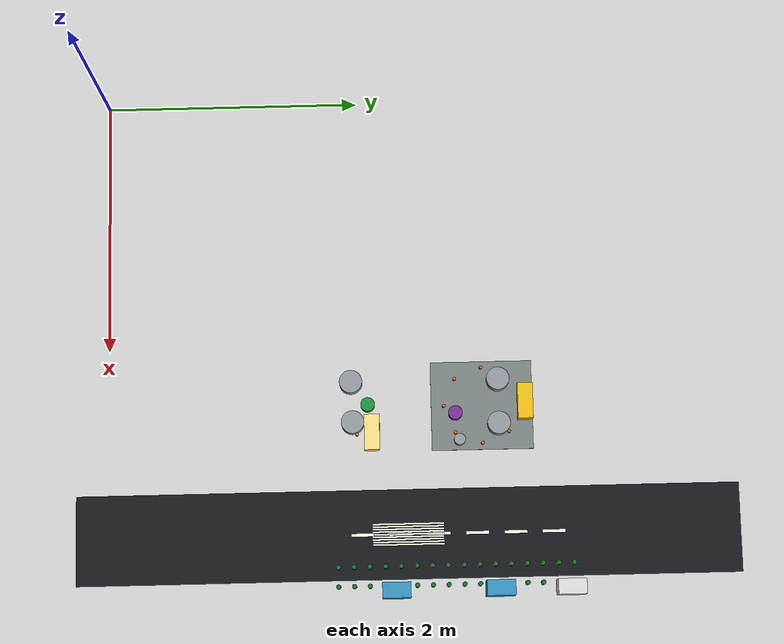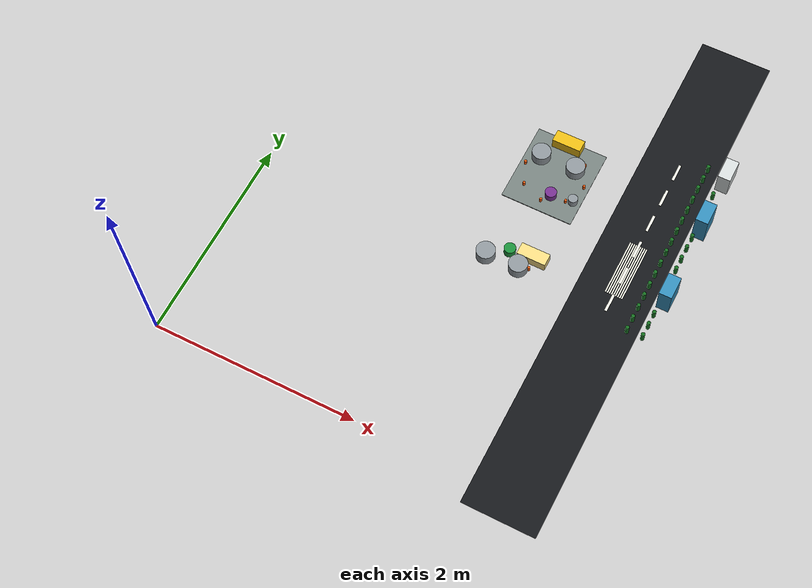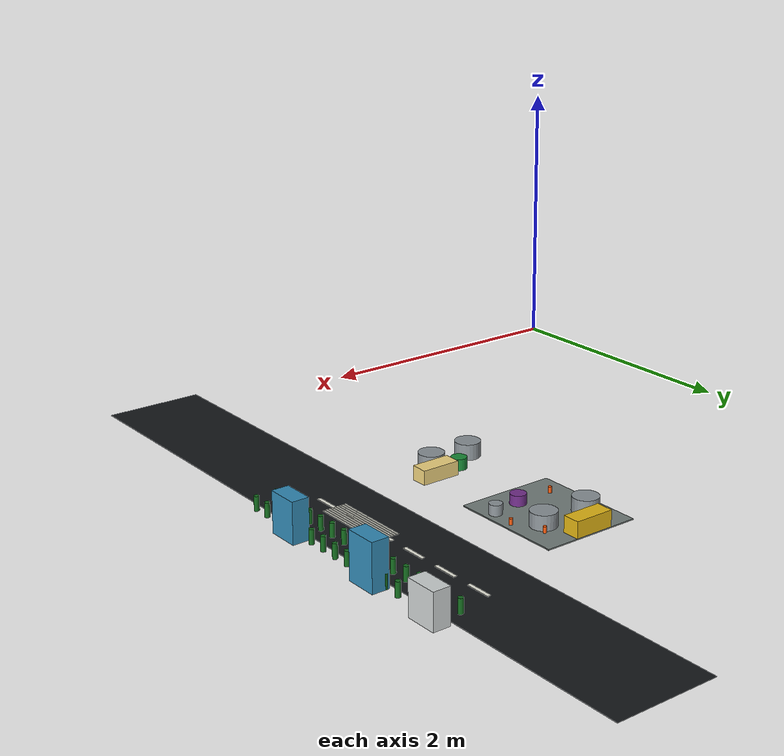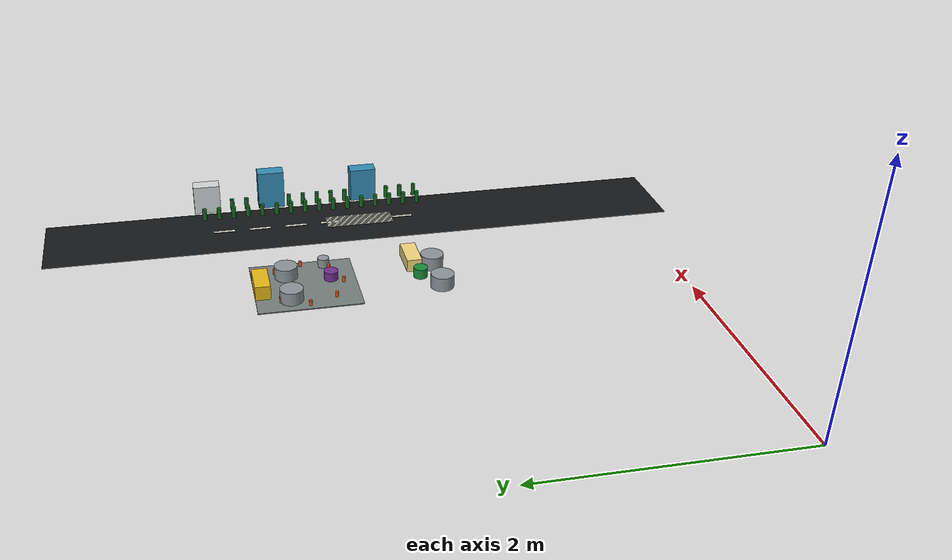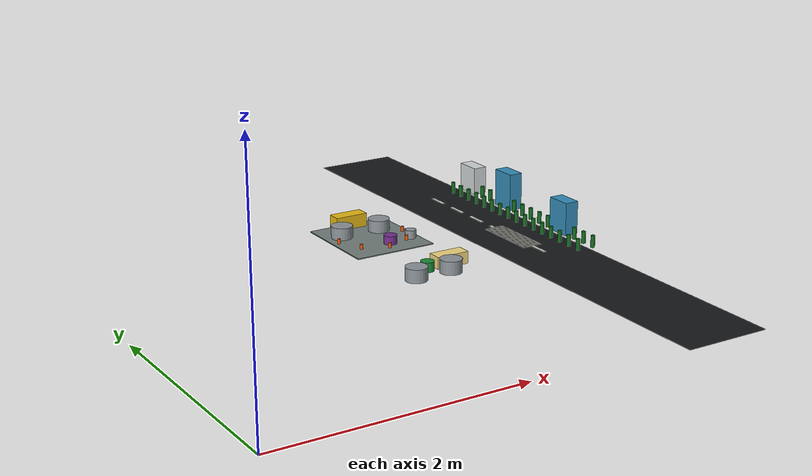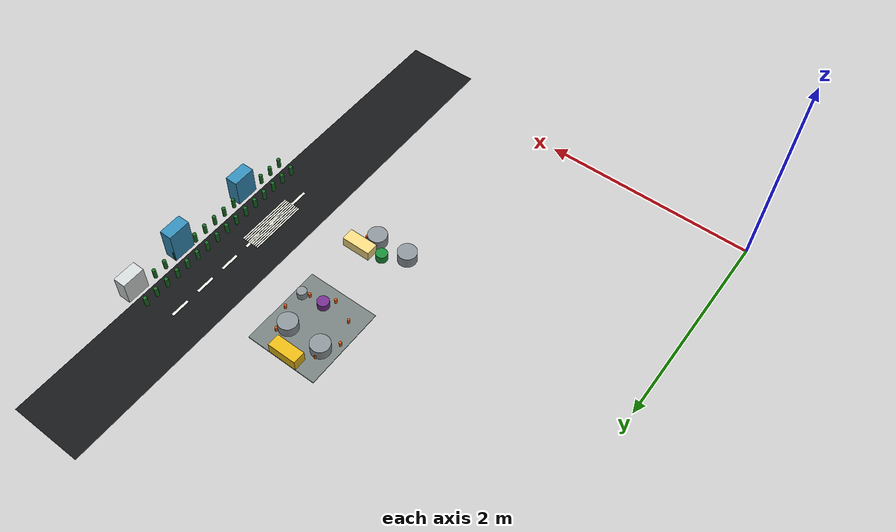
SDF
<sdf version="1.7">
 <world name="nexus_sandbox_imx219">
  <model name="RD-RING-E">
   <static>true</static>
   <pose>3.5 2.35 0.051000000000000004 0 0 0</pose>
   <link name="link">
    <collision name="collision">
     <geometry><box><size>0.7000000000000001 5.2 0.002</size></box></geometry>
    </collision>
    <visual name="visual">
     <geometry><box><size>0.7000000000000001 5.2 0.002</size></box></geometry>
     <material><ambient>0.08 0.09 0.1 1</ambient><diffuse>0.08 0.09 0.1 1</diffuse></material>
    </visual>
   </link>
  </model>
  <model name="LM-RING-E-05">
   <static>true</static>
   <pose>3.5 1.9900000000000002 0.05450000000000001 0 0 0</pose>
   <link name="link">
    <collision name="collision"><geometry><box><size>0.025 0.18 0.004</size></box></geometry></collision>
    <visual name="visual">
     <geometry><box><size>0.025 0.18 0.004</size></box></geometry>
     <material><ambient>0.93 0.93 0.88 1</ambient><diffuse>0.93 0.93 0.88 1</diffuse></material>
    </visual>
   </link>
  </model>
  <model name="LM-RING-E-06">
   <static>true</static>
   <pose>3.5 2.29 0.05450000000000001 0 0 0</pose>
   <link name="link">
    <collision name="collision"><geometry><box><size>0.025 0.18 0.004</size></box></geometry></collision>
    <visual name="visual">
     <geometry><box><size>0.025 0.18 0.004</size></box></geometry>
     <material><ambient>0.93 0.93 0.88 1</ambient><diffuse>0.93 0.93 0.88 1</diffuse></material>
    </visual>
   </link>
  </model>
  <model name="LM-RING-E-07">
   <static>true</static>
   <pose>3.5 2.59 0.05450000000000001 0 0 0</pose>
   <link name="link">
    <collision name="collision"><geometry><box><size>0.025 0.18 0.004</size></box></geometry></collision>
    <visual name="visual">
     <geometry><box><size>0.025 0.18 0.004</size></box></geometry>
     <material><ambient>0.93 0.93 0.88 1</ambient><diffuse>0.93 0.93 0.88 1</diffuse></material>
    </visual>
   </link>
  </model>
  <model name="LM-RING-E-08">
   <static>true</static>
   <pose>3.5 2.89 0.05450000000000001 0 0 0</pose>
   <link name="link">
    <collision name="collision"><geometry><box><size>0.025 0.18 0.004</size></box></geometry></collision>
    <visual name="visual">
     <geometry><box><size>0.025 0.18 0.004</size></box></geometry>
     <material><ambient>0.93 0.93 0.88 1</ambient><diffuse>0.93 0.93 0.88 1</diffuse></material>
    </visual>
   </link>
  </model>
  <model name="LM-RING-E-09">
   <static>true</static>
   <pose>3.5 3.19 0.05450000000000001 0 0 0</pose>
   <link name="link">
    <collision name="collision"><geometry><box><size>0.025 0.18 0.004</size></box></geometry></collision>
    <visual name="visual">
     <geometry><box><size>0.025 0.18 0.004</size></box></geometry>
     <material><ambient>0.93 0.93 0.88 1</ambient><diffuse>0.93 0.93 0.88 1</diffuse></material>
    </visual>
   </link>
  </model>
  <model name="LM-RING-E-10">
   <static>true</static>
   <pose>3.5 3.4899999999999998 0.05450000000000001 0 0 0</pose>
   <link name="link">
    <collision name="collision"><geometry><box><size>0.025 0.18 0.004</size></box></geometry></collision>
    <visual name="visual">
     <geometry><box><size>0.025 0.18 0.004</size></box></geometry>
     <material><ambient>0.93 0.93 0.88 1</ambient><diffuse>0.93 0.93 0.88 1</diffuse></material>
    </visual>
   </link>
  </model>
  <model name="CW-C-E-01">
   <static>true</static>
   <pose>3.42 2.35 0.05450000000000001 0 0 0</pose>
   <link name="link">
    <collision name="collision"><geometry><box><size>0.014 0.56 0.004</size></box></geometry></collision>
    <visual name="visual">
     <geometry><box><size>0.014 0.56 0.004</size></box></geometry>
     <material><ambient>0.93 0.93 0.88 1</ambient><diffuse>0.93 0.93 0.88 1</diffuse></material>
    </visual>
   </link>
  </model>
  <model name="CW-C-E-02">
   <static>true</static>
   <pose>3.44 2.35 0.05450000000000001 0 0 0</pose>
   <link name="link">
    <collision name="collision"><geometry><box><size>0.014 0.56 0.004</size></box></geometry></collision>
    <visual name="visual">
     <geometry><box><size>0.014 0.56 0.004</size></box></geometry>
     <material><ambient>0.93 0.93 0.88 1</ambient><diffuse>0.93 0.93 0.88 1</diffuse></material>
    </visual>
   </link>
  </model>
  <model name="CW-C-E-03">
   <static>true</static>
   <pose>3.46 2.35 0.05450000000000001 0 0 0</pose>
   <link name="link">
    <collision name="collision"><geometry><box><size>0.014 0.56 0.004</size></box></geometry></collision>
    <visual name="visual">
     <geometry><box><size>0.014 0.56 0.004</size></box></geometry>
     <material><ambient>0.93 0.93 0.88 1</ambient><diffuse>0.93 0.93 0.88 1</diffuse></material>
    </visual>
   </link>
  </model>
  <model name="CW-C-E-04">
   <static>true</static>
   <pose>3.48 2.35 0.05450000000000001 0 0 0</pose>
   <link name="link">
    <collision name="collision"><geometry><box><size>0.014 0.56 0.004</size></box></geometry></collision>
    <visual name="visual">
     <geometry><box><size>0.014 0.56 0.004</size></box></geometry>
     <material><ambient>0.93 0.93 0.88 1</ambient><diffuse>0.93 0.93 0.88 1</diffuse></material>
    </visual>
   </link>
  </model>
  <model name="CW-C-E-05">
   <static>true</static>
   <pose>3.5 2.35 0.05450000000000001 0 0 0</pose>
   <link name="link">
    <collision name="collision"><geometry><box><size>0.014 0.56 0.004</size></box></geometry></collision>
    <visual name="visual">
     <geometry><box><size>0.014 0.56 0.004</size></box></geometry>
     <material><ambient>0.93 0.93 0.88 1</ambient><diffuse>0.93 0.93 0.88 1</diffuse></material>
    </visual>
   </link>
  </model>
  <model name="CW-C-E-06">
   <static>true</static>
   <pose>3.52 2.35 0.05450000000000001 0 0 0</pose>
   <link name="link">
    <collision name="collision"><geometry><box><size>0.014 0.56 0.004</size></box></geometry></collision>
    <visual name="visual">
     <geometry><box><size>0.014 0.56 0.004</size></box></geometry>
     <material><ambient>0.93 0.93 0.88 1</ambient><diffuse>0.93 0.93 0.88 1</diffuse></material>
    </visual>
   </link>
  </model>
  <model name="CW-C-E-07">
   <static>true</static>
   <pose>3.54 2.35 0.05450000000000001 0 0 0</pose>
   <link name="link">
    <collision name="collision"><geometry><box><size>0.014 0.56 0.004</size></box></geometry></collision>
    <visual name="visual">
     <geometry><box><size>0.014 0.56 0.004</size></box></geometry>
     <material><ambient>0.93 0.93 0.88 1</ambient><diffuse>0.93 0.93 0.88 1</diffuse></material>
    </visual>
   </link>
  </model>
  <model name="CW-C-E-08">
   <static>true</static>
   <pose>3.56 2.35 0.05450000000000001 0 0 0</pose>
   <link name="link">
    <collision name="collision"><geometry><box><size>0.014 0.56 0.004</size></box></geometry></collision>
    <visual name="visual">
     <geometry><box><size>0.014 0.56 0.004</size></box></geometry>
     <material><ambient>0.93 0.93 0.88 1</ambient><diffuse>0.93 0.93 0.88 1</diffuse></material>
    </visual>
   </link>
  </model>
  <model name="CW-C-E-09">
   <static>true</static>
   <pose>3.58 2.35 0.05450000000000001 0 0 0</pose>
   <link name="link">
    <collision name="collision"><geometry><box><size>0.014 0.56 0.004</size></box></geometry></collision>
    <visual name="visual">
     <geometry><box><size>0.014 0.56 0.004</size></box></geometry>
     <material><ambient>0.93 0.93 0.88 1</ambient><diffuse>0.93 0.93 0.88 1</diffuse></material>
    </visual>
   </link>
  </model>
  <model name="IND-NE-PAD">
   <static>true</static>
   <pose>2.5 2.95 0.054000000000000006 0 0 0</pose>
   <link name="link">
    <collision name="collision">
     <geometry><box><size>0.7000000000000001 0.8 0.008</size></box></geometry>
    </collision>
    <visual name="visual">
     <geometry><box><size>0.7000000000000001 0.8 0.008</size></box></geometry>
     <material><ambient>0.46 0.5 0.49 1</ambient><diffuse>0.46 0.5 0.49 1</diffuse></material>
    </visual>
   </link>
  </model>
  <model name="NE-T01">
   <static>true</static>
   <pose>2.3000000000000003 3.08 0.10500000000000001 0 0 0</pose>
   <link name="link">
    <collision name="collision">
     <geometry><cylinder><radius>0.09</radius><length>0.11</length></cylinder></geometry>
    </collision>
    <visual name="visual">
     <geometry><cylinder><radius>0.09</radius><length>0.11</length></cylinder></geometry>
     <material><ambient>0.55 0.58 0.6 1</ambient><diffuse>0.55 0.58 0.6 1</diffuse></material>
    </visual>
   </link>
  </model>
  <model name="NE-T02">
   <static>true</static>
   <pose>2.65 3.08 0.10500000000000001 0 0 0</pose>
   <link name="link">
    <collision name="collision">
     <geometry><cylinder><radius>0.09</radius><length>0.11</length></cylinder></geometry>
    </collision>
    <visual name="visual">
     <geometry><cylinder><radius>0.09</radius><length>0.11</length></cylinder></geometry>
     <material><ambient>0.55 0.58 0.6 1</ambient><diffuse>0.55 0.58 0.6 1</diffuse></material>
    </visual>
   </link>
  </model>
  <model name="NE-T03">
   <static>true</static>
   <pose>2.77 2.77 0.09 0 0 0</pose>
   <link name="link">
    <collision name="collision">
     <geometry><cylinder><radius>0.045</radius><length>0.08</length></cylinder></geometry>
    </collision>
    <visual name="visual">
     <geometry><cylinder><radius>0.045</radius><length>0.08</length></cylinder></geometry>
     <material><ambient>0.55 0.58 0.6 1</ambient><diffuse>0.55 0.58 0.6 1</diffuse></material>
    </visual>
   </link>
  </model>
  <model name="NE-T04">
   <static>true</static>
   <pose>2.56 2.74 0.09 0 0 0</pose>
   <link name="link">
    <collision name="collision">
     <geometry><cylinder><radius>0.055</radius><length>0.08</length></cylinder></geometry>
    </collision>
    <visual name="visual">
     <geometry><cylinder><radius>0.055</radius><length>0.08</length></cylinder></geometry>
     <material><ambient>0.45 0.18 0.55 1</ambient><diffuse>0.45 0.18 0.55 1</diffuse></material>
    </visual>
   </link>
  </model>
  <model name="NE-B01">
   <static>true</static>
   <pose>2.48 3.29 0.11 0 0 0</pose>
   <link name="link">
    <collision name="collision"><geometry><box><size>0.28 0.12 0.12</size></box></geometry></collision>
    <visual name="visual">
     <geometry><box><size>0.28 0.12 0.12</size></box></geometry>
     <material><ambient>0.9 0.72 0.08 1</ambient><diffuse>0.9 0.72 0.08 1</diffuse></material>
    </visual>
   </link>
  </model>
  <model name="SE-T01">
   <static>true</static>
   <pose>2.3000000000000003 1.92 0.10500000000000001 0 0 0</pose>
   <link name="link">
    <collision name="collision">
     <geometry><cylinder><radius>0.09</radius><length>0.11</length></cylinder></geometry>
    </collision>
    <visual name="visual">
     <geometry><cylinder><radius>0.09</radius><length>0.11</length></cylinder></geometry>
     <material><ambient>0.55 0.58 0.6 1</ambient><diffuse>0.55 0.58 0.6 1</diffuse></material>
    </visual>
   </link>
  </model>
  <model name="SE-T02">
   <static>true</static>
   <pose>2.62 1.93 0.10500000000000001 0 0 0</pose>
   <link name="link">
    <collision name="collision">
     <geometry><cylinder><radius>0.09</radius><length>0.11</length></cylinder></geometry>
    </collision>
    <visual name="visual">
     <geometry><cylinder><radius>0.09</radius><length>0.11</length></cylinder></geometry>
     <material><ambient>0.55 0.58 0.6 1</ambient><diffuse>0.55 0.58 0.6 1</diffuse></material>
    </visual>
   </link>
  </model>
  <model name="SE-T04">
   <static>true</static>
   <pose>2.48 2.05 0.09 0 0 0</pose>
   <link name="link">
    <collision name="collision">
     <geometry><cylinder><radius>0.055</radius><length>0.08</length></cylinder></geometry>
    </collision>
    <visual name="visual">
     <geometry><cylinder><radius>0.055</radius><length>0.08</length></cylinder></geometry>
     <material><ambient>0.1 0.55 0.22 1</ambient><diffuse>0.1 0.55 0.22 1</diffuse></material>
    </visual>
   </link>
  </model>
  <model name="SE-B01">
   <static>true</static>
   <pose>2.7 2.08 0.1 0 0 0</pose>
   <link name="link">
    <collision name="collision"><geometry><box><size>0.28 0.12 0.1</size></box></geometry></collision>
    <visual name="visual">
     <geometry><box><size>0.28 0.12 0.1</size></box></geometry>
     <material><ambient>0.95 0.84 0.5 1</ambient><diffuse>0.95 0.84 0.5 1</diffuse></material>
    </visual>
   </link>
  </model>
  <model name="BLD-R02">
   <static>true</static>
   <pose>3.94 2.25 0.19 0 0 0</pose>
   <link name="link">
    <collision name="collision"><geometry><box><size>0.12 0.22 0.28</size></box></geometry></collision>
    <visual name="visual">
     <geometry><box><size>0.12 0.22 0.28</size></box></geometry>
     <material><ambient>0.2 0.55 0.72 1</ambient><diffuse>0.2 0.55 0.72 1</diffuse></material>
    </visual>
   </link>
  </model>
  <model name="BLD-R03">
   <static>true</static>
   <pose>3.94 3.0500000000000003 0.21000000000000002 0 0 0</pose>
   <link name="link">
    <collision name="collision"><geometry><box><size>0.12 0.22 0.32</size></box></geometry></collision>
    <visual name="visual">
     <geometry><box><size>0.12 0.22 0.32</size></box></geometry>
     <material><ambient>0.2 0.55 0.72 1</ambient><diffuse>0.2 0.55 0.72 1</diffuse></material>
    </visual>
   </link>
  </model>
  <model name="BLD-R04">
   <static>true</static>
   <pose>3.94 3.6 0.16999999999999998 0 0 0</pose>
   <link name="link">
    <collision name="collision"><geometry><box><size>0.12 0.22 0.24</size></box></geometry></collision>
    <visual name="visual">
     <geometry><box><size>0.12 0.22 0.24</size></box></geometry>
     <material><ambient>0.82 0.84 0.84 1</ambient><diffuse>0.82 0.84 0.84 1</diffuse></material>
    </visual>
   </link>
  </model>
  <model name="TR-R01-10">
   <static>true</static>
   <pose>3.9 1.7999999999999998 0.1 0 0 0</pose>
   <link name="link">
    <collision name="collision">
     <geometry><cylinder><radius>0.0175</radius><length>0.1</length></cylinder></geometry>
    </collision>
    <visual name="visual">
     <geometry><cylinder><radius>0.0175</radius><length>0.1</length></cylinder></geometry>
     <material><ambient>0.08 0.42 0.12 1</ambient><diffuse>0.08 0.42 0.12 1</diffuse></material>
    </visual>
   </link>
  </model>
  <model name="TR-R01-11">
   <static>true</static>
   <pose>3.9 1.922222222222222 0.1 0 0 0</pose>
   <link name="link">
    <collision name="collision">
     <geometry><cylinder><radius>0.0175</radius><length>0.1</length></cylinder></geometry>
    </collision>
    <visual name="visual">
     <geometry><cylinder><radius>0.0175</radius><length>0.1</length></cylinder></geometry>
     <material><ambient>0.08 0.42 0.12 1</ambient><diffuse>0.08 0.42 0.12 1</diffuse></material>
    </visual>
   </link>
  </model>
  <model name="TR-R01-12">
   <static>true</static>
   <pose>3.9 2.0444444444444443 0.1 0 0 0</pose>
   <link name="link">
    <collision name="collision">
     <geometry><cylinder><radius>0.0175</radius><length>0.1</length></cylinder></geometry>
    </collision>
    <visual name="visual">
     <geometry><cylinder><radius>0.0175</radius><length>0.1</length></cylinder></geometry>
     <material><ambient>0.08 0.42 0.12 1</ambient><diffuse>0.08 0.42 0.12 1</diffuse></material>
    </visual>
   </link>
  </model>
  <model name="TR-R01-13">
   <static>true</static>
   <pose>3.9 2.1666666666666665 0.1 0 0 0</pose>
   <link name="link">
    <collision name="collision">
     <geometry><cylinder><radius>0.0175</radius><length>0.1</length></cylinder></geometry>
    </collision>
    <visual name="visual">
     <geometry><cylinder><radius>0.0175</radius><length>0.1</length></cylinder></geometry>
     <material><ambient>0.08 0.42 0.12 1</ambient><diffuse>0.08 0.42 0.12 1</diffuse></material>
    </visual>
   </link>
  </model>
  <model name="TR-R01-14">
   <static>true</static>
   <pose>3.9 2.2888888888888888 0.1 0 0 0</pose>
   <link name="link">
    <collision name="collision">
     <geometry><cylinder><radius>0.0175</radius><length>0.1</length></cylinder></geometry>
    </collision>
    <visual name="visual">
     <geometry><cylinder><radius>0.0175</radius><length>0.1</length></cylinder></geometry>
     <material><ambient>0.08 0.42 0.12 1</ambient><diffuse>0.08 0.42 0.12 1</diffuse></material>
    </visual>
   </link>
  </model>
  <model name="TR-R01-15">
   <static>true</static>
   <pose>3.9 2.411111111111111 0.1 0 0 0</pose>
   <link name="link">
    <collision name="collision">
     <geometry><cylinder><radius>0.0175</radius><length>0.1</length></cylinder></geometry>
    </collision>
    <visual name="visual">
     <geometry><cylinder><radius>0.0175</radius><length>0.1</length></cylinder></geometry>
     <material><ambient>0.08 0.42 0.12 1</ambient><diffuse>0.08 0.42 0.12 1</diffuse></material>
    </visual>
   </link>
  </model>
  <model name="TR-R01-16">
   <static>true</static>
   <pose>3.9 2.533333333333333 0.1 0 0 0</pose>
   <link name="link">
    <collision name="collision">
     <geometry><cylinder><radius>0.0175</radius><length>0.1</length></cylinder></geometry>
    </collision>
    <visual name="visual">
     <geometry><cylinder><radius>0.0175</radius><length>0.1</length></cylinder></geometry>
     <material><ambient>0.08 0.42 0.12 1</ambient><diffuse>0.08 0.42 0.12 1</diffuse></material>
    </visual>
   </link>
  </model>
  <model name="TR-R01-17">
   <static>true</static>
   <pose>3.9 2.6555555555555554 0.1 0 0 0</pose>
   <link name="link">
    <collision name="collision">
     <geometry><cylinder><radius>0.0175</radius><length>0.1</length></cylinder></geometry>
    </collision>
    <visual name="visual">
     <geometry><cylinder><radius>0.0175</radius><length>0.1</length></cylinder></geometry>
     <material><ambient>0.08 0.42 0.12 1</ambient><diffuse>0.08 0.42 0.12 1</diffuse></material>
    </visual>
   </link>
  </model>
  <model name="TR-R01-18">
   <static>true</static>
   <pose>3.9 2.777777777777778 0.1 0 0 0</pose>
   <link name="link">
    <collision name="collision">
     <geometry><cylinder><radius>0.0175</radius><length>0.1</length></cylinder></geometry>
    </collision>
    <visual name="visual">
     <geometry><cylinder><radius>0.0175</radius><length>0.1</length></cylinder></geometry>
     <material><ambient>0.08 0.42 0.12 1</ambient><diffuse>0.08 0.42 0.12 1</diffuse></material>
    </visual>
   </link>
  </model>
  <model name="TR-R01-19">
   <static>true</static>
   <pose>3.9 2.9 0.1 0 0 0</pose>
   <link name="link">
    <collision name="collision">
     <geometry><cylinder><radius>0.0175</radius><length>0.1</length></cylinder></geometry>
    </collision>
    <visual name="visual">
     <geometry><cylinder><radius>0.0175</radius><length>0.1</length></cylinder></geometry>
     <material><ambient>0.08 0.42 0.12 1</ambient><diffuse>0.08 0.42 0.12 1</diffuse></material>
    </visual>
   </link>
  </model>
  <model name="TR-R01-20">
   <static>true</static>
   <pose>3.9 3.022222222222222 0.1 0 0 0</pose>
   <link name="link">
    <collision name="collision">
     <geometry><cylinder><radius>0.0175</radius><length>0.1</length></cylinder></geometry>
    </collision>
    <visual name="visual">
     <geometry><cylinder><radius>0.0175</radius><length>0.1</length></cylinder></geometry>
     <material><ambient>0.08 0.42 0.12 1</ambient><diffuse>0.08 0.42 0.12 1</diffuse></material>
    </visual>
   </link>
  </model>
  <model name="TR-R01-21">
   <static>true</static>
   <pose>3.9 3.1444444444444444 0.1 0 0 0</pose>
   <link name="link">
    <collision name="collision">
     <geometry><cylinder><radius>0.0175</radius><length>0.1</length></cylinder></geometry>
    </collision>
    <visual name="visual">
     <geometry><cylinder><radius>0.0175</radius><length>0.1</length></cylinder></geometry>
     <material><ambient>0.08 0.42 0.12 1</ambient><diffuse>0.08 0.42 0.12 1</diffuse></material>
    </visual>
   </link>
  </model>
  <model name="TR-R01-22">
   <static>true</static>
   <pose>3.9 3.2666666666666666 0.1 0 0 0</pose>
   <link name="link">
    <collision name="collision">
     <geometry><cylinder><radius>0.0175</radius><length>0.1</length></cylinder></geometry>
    </collision>
    <visual name="visual">
     <geometry><cylinder><radius>0.0175</radius><length>0.1</length></cylinder></geometry>
     <material><ambient>0.08 0.42 0.12 1</ambient><diffuse>0.08 0.42 0.12 1</diffuse></material>
    </visual>
   </link>
  </model>
  <model name="TR-R01-23">
   <static>true</static>
   <pose>3.9 3.388888888888889 0.1 0 0 0</pose>
   <link name="link">
    <collision name="collision">
     <geometry><cylinder><radius>0.0175</radius><length>0.1</length></cylinder></geometry>
    </collision>
    <visual name="visual">
     <geometry><cylinder><radius>0.0175</radius><length>0.1</length></cylinder></geometry>
     <material><ambient>0.08 0.42 0.12 1</ambient><diffuse>0.08 0.42 0.12 1</diffuse></material>
    </visual>
   </link>
  </model>
  <model name="TR-R01-24">
   <static>true</static>
   <pose>3.9 3.511111111111111 0.1 0 0 0</pose>
   <link name="link">
    <collision name="collision">
     <geometry><cylinder><radius>0.0175</radius><length>0.1</length></cylinder></geometry>
    </collision>
    <visual name="visual">
     <geometry><cylinder><radius>0.0175</radius><length>0.1</length></cylinder></geometry>
     <material><ambient>0.08 0.42 0.12 1</ambient><diffuse>0.08 0.42 0.12 1</diffuse></material>
    </visual>
   </link>
  </model>
  <model name="TR-R01-25">
   <static>true</static>
   <pose>3.9 3.6333333333333333 0.1 0 0 0</pose>
   <link name="link">
    <collision name="collision">
     <geometry><cylinder><radius>0.0175</radius><length>0.1</length></cylinder></geometry>
    </collision>
    <visual name="visual">
     <geometry><cylinder><radius>0.0175</radius><length>0.1</length></cylinder></geometry>
     <material><ambient>0.08 0.42 0.12 1</ambient><diffuse>0.08 0.42 0.12 1</diffuse></material>
    </visual>
   </link>
  </model>
  <model name="TR-R02-10">
   <static>true</static>
   <pose>3.75 1.7999999999999998 0.1 0 0 0</pose>
   <link name="link">
    <collision name="collision">
     <geometry><cylinder><radius>0.0175</radius><length>0.1</length></cylinder></geometry>
    </collision>
    <visual name="visual">
     <geometry><cylinder><radius>0.0175</radius><length>0.1</length></cylinder></geometry>
     <material><ambient>0.08 0.42 0.12 1</ambient><diffuse>0.08 0.42 0.12 1</diffuse></material>
    </visual>
   </link>
  </model>
  <model name="TR-R02-11">
   <static>true</static>
   <pose>3.75 1.922222222222222 0.1 0 0 0</pose>
   <link name="link">
    <collision name="collision">
     <geometry><cylinder><radius>0.0175</radius><length>0.1</length></cylinder></geometry>
    </collision>
    <visual name="visual">
     <geometry><cylinder><radius>0.0175</radius><length>0.1</length></cylinder></geometry>
     <material><ambient>0.08 0.42 0.12 1</ambient><diffuse>0.08 0.42 0.12 1</diffuse></material>
    </visual>
   </link>
  </model>
  <model name="TR-R02-12">
   <static>true</static>
   <pose>3.75 2.0444444444444443 0.1 0 0 0</pose>
   <link name="link">
    <collision name="collision">
     <geometry><cylinder><radius>0.0175</radius><length>0.1</length></cylinder></geometry>
    </collision>
    <visual name="visual">
     <geometry><cylinder><radius>0.0175</radius><length>0.1</length></cylinder></geometry>
     <material><ambient>0.08 0.42 0.12 1</ambient><diffuse>0.08 0.42 0.12 1</diffuse></material>
    </visual>
   </link>
  </model>
  <model name="TR-R02-13">
   <static>true</static>
   <pose>3.75 2.1666666666666665 0.1 0 0 0</pose>
   <link name="link">
    <collision name="collision">
     <geometry><cylinder><radius>0.0175</radius><length>0.1</length></cylinder></geometry>
    </collision>
    <visual name="visual">
     <geometry><cylinder><radius>0.0175</radius><length>0.1</length></cylinder></geometry>
     <material><ambient>0.08 0.42 0.12 1</ambient><diffuse>0.08 0.42 0.12 1</diffuse></material>
    </visual>
   </link>
  </model>
  <model name="TR-R02-14">
   <static>true</static>
   <pose>3.75 2.2888888888888888 0.1 0 0 0</pose>
   <link name="link">
    <collision name="collision">
     <geometry><cylinder><radius>0.0175</radius><length>0.1</length></cylinder></geometry>
    </collision>
    <visual name="visual">
     <geometry><cylinder><radius>0.0175</radius><length>0.1</length></cylinder></geometry>
     <material><ambient>0.08 0.42 0.12 1</ambient><diffuse>0.08 0.42 0.12 1</diffuse></material>
    </visual>
   </link>
  </model>
  <model name="TR-R02-15">
   <static>true</static>
   <pose>3.75 2.411111111111111 0.1 0 0 0</pose>
   <link name="link">
    <collision name="collision">
     <geometry><cylinder><radius>0.0175</radius><length>0.1</length></cylinder></geometry>
    </collision>
    <visual name="visual">
     <geometry><cylinder><radius>0.0175</radius><length>0.1</length></cylinder></geometry>
     <material><ambient>0.08 0.42 0.12 1</ambient><diffuse>0.08 0.42 0.12 1</diffuse></material>
    </visual>
   </link>
  </model>
  <model name="TR-R02-16">
   <static>true</static>
   <pose>3.75 2.533333333333333 0.1 0 0 0</pose>
   <link name="link">
    <collision name="collision">
     <geometry><cylinder><radius>0.0175</radius><length>0.1</length></cylinder></geometry>
    </collision>
    <visual name="visual">
     <geometry><cylinder><radius>0.0175</radius><length>0.1</length></cylinder></geometry>
     <material><ambient>0.08 0.42 0.12 1</ambient><diffuse>0.08 0.42 0.12 1</diffuse></material>
    </visual>
   </link>
  </model>
  <model name="TR-R02-17">
   <static>true</static>
   <pose>3.75 2.6555555555555554 0.1 0 0 0</pose>
   <link name="link">
    <collision name="collision">
     <geometry><cylinder><radius>0.0175</radius><length>0.1</length></cylinder></geometry>
    </collision>
    <visual name="visual">
     <geometry><cylinder><radius>0.0175</radius><length>0.1</length></cylinder></geometry>
     <material><ambient>0.08 0.42 0.12 1</ambient><diffuse>0.08 0.42 0.12 1</diffuse></material>
    </visual>
   </link>
  </model>
  <model name="TR-R02-18">
   <static>true</static>
   <pose>3.75 2.777777777777778 0.1 0 0 0</pose>
   <link name="link">
    <collision name="collision">
     <geometry><cylinder><radius>0.0175</radius><length>0.1</length></cylinder></geometry>
    </collision>
    <visual name="visual">
     <geometry><cylinder><radius>0.0175</radius><length>0.1</length></cylinder></geometry>
     <material><ambient>0.08 0.42 0.12 1</ambient><diffuse>0.08 0.42 0.12 1</diffuse></material>
    </visual>
   </link>
  </model>
  <model name="TR-R02-19">
   <static>true</static>
   <pose>3.75 2.9 0.1 0 0 0</pose>
   <link name="link">
    <collision name="collision">
     <geometry><cylinder><radius>0.0175</radius><length>0.1</length></cylinder></geometry>
    </collision>
    <visual name="visual">
     <geometry><cylinder><radius>0.0175</radius><length>0.1</length></cylinder></geometry>
     <material><ambient>0.08 0.42 0.12 1</ambient><diffuse>0.08 0.42 0.12 1</diffuse></material>
    </visual>
   </link>
  </model>
  <model name="TR-R02-20">
   <static>true</static>
   <pose>3.75 3.022222222222222 0.1 0 0 0</pose>
   <link name="link">
    <collision name="collision">
     <geometry><cylinder><radius>0.0175</radius><length>0.1</length></cylinder></geometry>
    </collision>
    <visual name="visual">
     <geometry><cylinder><radius>0.0175</radius><length>0.1</length></cylinder></geometry>
     <material><ambient>0.08 0.42 0.12 1</ambient><diffuse>0.08 0.42 0.12 1</diffuse></material>
    </visual>
   </link>
  </model>
  <model name="TR-R02-21">
   <static>true</static>
   <pose>3.75 3.1444444444444444 0.1 0 0 0</pose>
   <link name="link">
    <collision name="collision">
     <geometry><cylinder><radius>0.0175</radius><length>0.1</length></cylinder></geometry>
    </collision>
    <visual name="visual">
     <geometry><cylinder><radius>0.0175</radius><length>0.1</length></cylinder></geometry>
     <material><ambient>0.08 0.42 0.12 1</ambient><diffuse>0.08 0.42 0.12 1</diffuse></material>
    </visual>
   </link>
  </model>
  <model name="TR-R02-22">
   <static>true</static>
   <pose>3.75 3.2666666666666666 0.1 0 0 0</pose>
   <link name="link">
    <collision name="collision">
     <geometry><cylinder><radius>0.0175</radius><length>0.1</length></cylinder></geometry>
    </collision>
    <visual name="visual">
     <geometry><cylinder><radius>0.0175</radius><length>0.1</length></cylinder></geometry>
     <material><ambient>0.08 0.42 0.12 1</ambient><diffuse>0.08 0.42 0.12 1</diffuse></material>
    </visual>
   </link>
  </model>
  <model name="TR-R02-23">
   <static>true</static>
   <pose>3.75 3.388888888888889 0.1 0 0 0</pose>
   <link name="link">
    <collision name="collision">
     <geometry><cylinder><radius>0.0175</radius><length>0.1</length></cylinder></geometry>
    </collision>
    <visual name="visual">
     <geometry><cylinder><radius>0.0175</radius><length>0.1</length></cylinder></geometry>
     <material><ambient>0.08 0.42 0.12 1</ambient><diffuse>0.08 0.42 0.12 1</diffuse></material>
    </visual>
   </link>
  </model>
  <model name="TR-R02-24">
   <static>true</static>
   <pose>3.75 3.511111111111111 0.1 0 0 0</pose>
   <link name="link">
    <collision name="collision">
     <geometry><cylinder><radius>0.0175</radius><length>0.1</length></cylinder></geometry>
    </collision>
    <visual name="visual">
     <geometry><cylinder><radius>0.0175</radius><length>0.1</length></cylinder></geometry>
     <material><ambient>0.08 0.42 0.12 1</ambient><diffuse>0.08 0.42 0.12 1</diffuse></material>
    </visual>
   </link>
  </model>
  <model name="TR-R02-25">
   <static>true</static>
   <pose>3.75 3.6333333333333333 0.1 0 0 0</pose>
   <link name="link">
    <collision name="collision">
     <geometry><cylinder><radius>0.0175</radius><length>0.1</length></cylinder></geometry>
    </collision>
    <visual name="visual">
     <geometry><cylinder><radius>0.0175</radius><length>0.1</length></cylinder></geometry>
     <material><ambient>0.08 0.42 0.12 1</ambient><diffuse>0.08 0.42 0.12 1</diffuse></material>
    </visual>
   </link>
  </model>
  <model name="NE-C-01">
   <static>true</static>
   <pose>2.8 2.95 0.07500000000000001 0 0 0</pose>
   <link name="link">
    <collision name="collision">
     <geometry><cylinder><radius>0.0125</radius><length>0.05</length></cylinder></geometry>
    </collision>
    <visual name="visual">
     <geometry><cylinder><radius>0.0125</radius><length>0.05</length></cylinder></geometry>
     <material><ambient>0.95 0.35 0.05 1</ambient><diffuse>0.95 0.35 0.05 1</diffuse></material>
    </visual>
   </link>
  </model>
  <model name="NE-C-02">
   <static>true</static>
   <pose>2.7121320343559643 3.1621320343559645 0.07500000000000001 0 0 0</pose>
   <link name="link">
    <collision name="collision">
     <geometry><cylinder><radius>0.0125</radius><length>0.05</length></cylinder></geometry>
    </collision>
    <visual name="visual">
     <geometry><cylinder><radius>0.0125</radius><length>0.05</length></cylinder></geometry>
     <material><ambient>0.95 0.35 0.05 1</ambient><diffuse>0.95 0.35 0.05 1</diffuse></material>
    </visual>
   </link>
  </model>
  <model name="NE-C-03">
   <static>true</static>
   <pose>2.5 3.25 0.07500000000000001 0 0 0</pose>
   <link name="link">
    <collision name="collision">
     <geometry><cylinder><radius>0.0125</radius><length>0.05</length></cylinder></geometry>
    </collision>
    <visual name="visual">
     <geometry><cylinder><radius>0.0125</radius><length>0.05</length></cylinder></geometry>
     <material><ambient>0.95 0.35 0.05 1</ambient><diffuse>0.95 0.35 0.05 1</diffuse></material>
    </visual>
   </link>
  </model>
  <model name="NE-C-04">
   <static>true</static>
   <pose>2.2878679656440357 3.1621320343559645 0.07500000000000001 0 0 0</pose>
   <link name="link">
    <collision name="collision">
     <geometry><cylinder><radius>0.0125</radius><length>0.05</length></cylinder></geometry>
    </collision>
    <visual name="visual">
     <geometry><cylinder><radius>0.0125</radius><length>0.05</length></cylinder></geometry>
     <material><ambient>0.95 0.35 0.05 1</ambient><diffuse>0.95 0.35 0.05 1</diffuse></material>
    </visual>
   </link>
  </model>
  <model name="NE-C-05">
   <static>true</static>
   <pose>2.2 2.95 0.07500000000000001 0 0 0</pose>
   <link name="link">
    <collision name="collision">
     <geometry><cylinder><radius>0.0125</radius><length>0.05</length></cylinder></geometry>
    </collision>
    <visual name="visual">
     <geometry><cylinder><radius>0.0125</radius><length>0.05</length></cylinder></geometry>
     <material><ambient>0.95 0.35 0.05 1</ambient><diffuse>0.95 0.35 0.05 1</diffuse></material>
    </visual>
   </link>
  </model>
  <model name="NE-C-06">
   <static>true</static>
   <pose>2.2878679656440357 2.737867965644036 0.07500000000000001 0 0 0</pose>
   <link name="link">
    <collision name="collision">
     <geometry><cylinder><radius>0.0125</radius><length>0.05</length></cylinder></geometry>
    </collision>
    <visual name="visual">
     <geometry><cylinder><radius>0.0125</radius><length>0.05</length></cylinder></geometry>
     <material><ambient>0.95 0.35 0.05 1</ambient><diffuse>0.95 0.35 0.05 1</diffuse></material>
    </visual>
   </link>
  </model>
  <model name="NE-C-07">
   <static>true</static>
   <pose>2.5 2.6500000000000004 0.07500000000000001 0 0 0</pose>
   <link name="link">
    <collision name="collision">
     <geometry><cylinder><radius>0.0125</radius><length>0.05</length></cylinder></geometry>
    </collision>
    <visual name="visual">
     <geometry><cylinder><radius>0.0125</radius><length>0.05</length></cylinder></geometry>
     <material><ambient>0.95 0.35 0.05 1</ambient><diffuse>0.95 0.35 0.05 1</diffuse></material>
    </visual>
   </link>
  </model>
  <model name="NE-C-08">
   <static>true</static>
   <pose>2.7121320343559643 2.737867965644036 0.07500000000000001 0 0 0</pose>
   <link name="link">
    <collision name="collision">
     <geometry><cylinder><radius>0.0125</radius><length>0.05</length></cylinder></geometry>
    </collision>
    <visual name="visual">
     <geometry><cylinder><radius>0.0125</radius><length>0.05</length></cylinder></geometry>
     <material><ambient>0.95 0.35 0.05 1</ambient><diffuse>0.95 0.35 0.05 1</diffuse></material>
    </visual>
   </link>
  </model>
  <model name="SE-C-02">
   <static>true</static>
   <pose>2.7121320343559643 1.9621320343559643 0.07500000000000001 0 0 0</pose>
   <link name="link">
    <collision name="collision">
     <geometry><cylinder><radius>0.0125</radius><length>0.05</length></cylinder></geometry>
    </collision>
    <visual name="visual">
     <geometry><cylinder><radius>0.0125</radius><length>0.05</length></cylinder></geometry>
     <material><ambient>0.95 0.35 0.05 1</ambient><diffuse>0.95 0.35 0.05 1</diffuse></material>
    </visual>
   </link>
  </model>
  <model name="SE-C-03">
   <static>true</static>
   <pose>2.5 2.05 0.07500000000000001 0 0 0</pose>
   <link name="link">
    <collision name="collision">
     <geometry><cylinder><radius>0.0125</radius><length>0.05</length></cylinder></geometry>
    </collision>
    <visual name="visual">
     <geometry><cylinder><radius>0.0125</radius><length>0.05</length></cylinder></geometry>
     <material><ambient>0.95 0.35 0.05 1</ambient><diffuse>0.95 0.35 0.05 1</diffuse></material>
    </visual>
   </link>
  </model>
  <model name="SE-C-04">
   <static>true</static>
   <pose>2.2878679656440357 1.9621320343559643 0.07500000000000001 0 0 0</pose>
   <link name="link">
    <collision name="collision">
     <geometry><cylinder><radius>0.0125</radius><length>0.05</length></cylinder></geometry>
    </collision>
    <visual name="visual">
     <geometry><cylinder><radius>0.0125</radius><length>0.05</length></cylinder></geometry>
     <material><ambient>0.95 0.35 0.05 1</ambient><diffuse>0.95 0.35 0.05 1</diffuse></material>
    </visual>
   </link>
  </model>
 </world>
</sdf>
